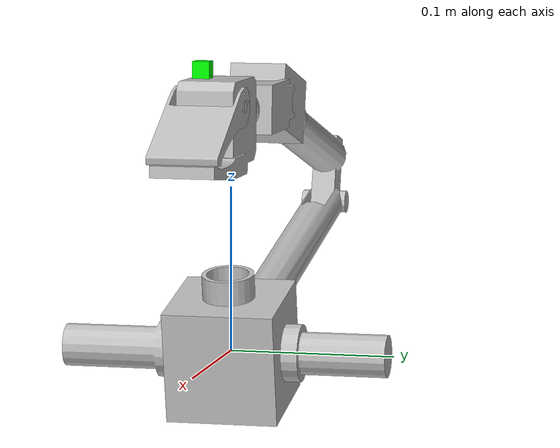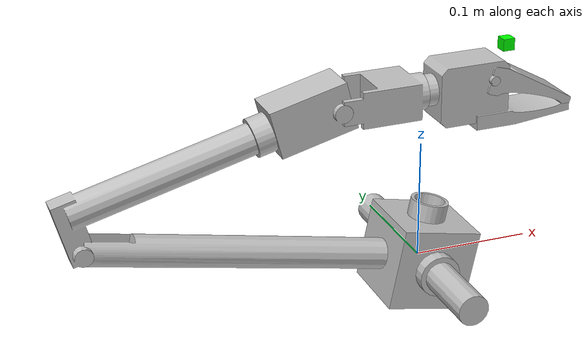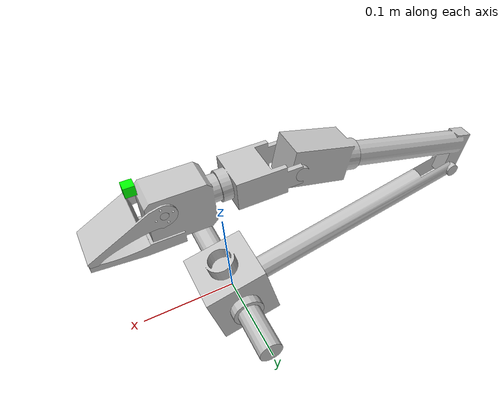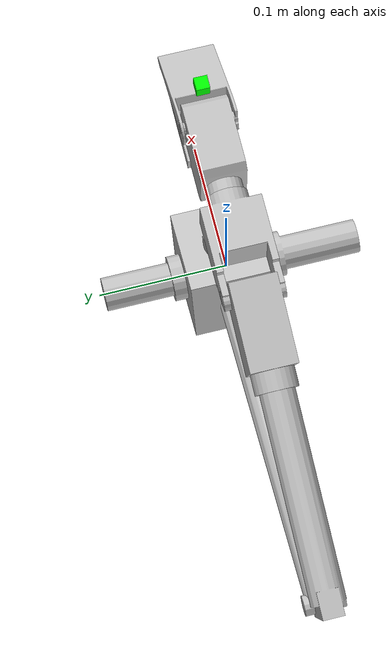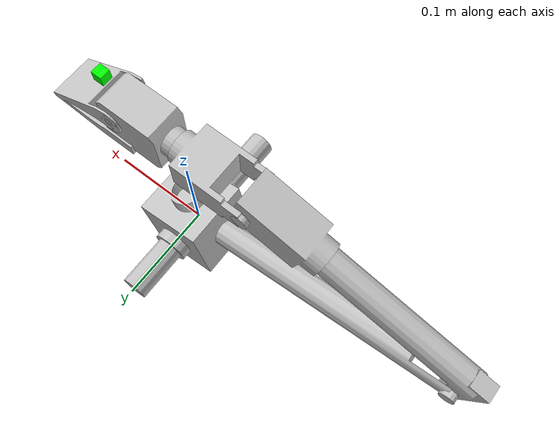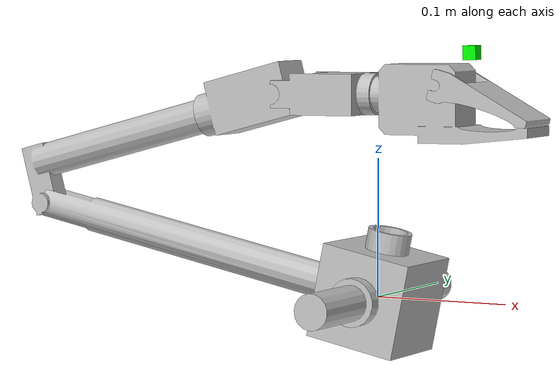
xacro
<?xml version="1.0" encoding="utf-8"?>

<robot
    name="reseq_arm_mk2" xmlns:xacro="http://www.ros.org/wiki/xacro">

    <xacro:arg name="sim_mode" default="false" />
    <xacro:arg name="version" default="mk2" />
    <xacro:arg name="config_path" default="$(find reseq_description)/config/mk2/reseq_mk2_can.yaml" />
    <xacro:arg name="controllers_config_file" default="$(find reseq_description)/config/reseq_controllers.yaml" />
    <xacro:arg name="base_z" default="0.0" />

    <link name="world" />

    <joint name="world_to_base_joint" type="fixed">
        <parent link="world"/>
        <child link="arm_base_link"/>
        <origin xyz="0 0 $(arg base_z)" rpy="0 0 0"/>
    </joint>

    <xacro:property name="config_path_prop" value="$(arg config_path)" />
    <xacro:property name="config" value="${xacro.load_yaml(config_path_prop)}" />
    <xacro:property name="CanInterface" value="${config['canbus']['channel']}" />

    <xacro:property name="NumModules" value="0" />
    <xacro:include filename="$(find reseq_description)/description/control/ros2_control.xacro" />

    <xacro:include filename="$(find reseq_arm_mk2)/urdf/reseq_arm_mk2.xacro" />
    <xacro:if value="$(arg sim_mode)">
        <xacro:include filename="$(find reseq_description)/description/sensors/gazebo/cameras_holder.xacro" />
    </xacro:if>

</robot>

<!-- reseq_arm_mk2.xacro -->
<robot
  name="reseq_arm_mk2" xmlns:xacro="http://www.ros.org/wiki/xacro">
  <xacro:include filename="$(find reseq_description)/description/macros/reseq_parameters.xacro" />
  <link
    name="arm_base_link">
    <inertial>
      <origin
        xyz="0 -0.0031516 0"
        rpy="0 0 0" />
      <mass
        value="0.11481" />
      <inertia
        ixx="0.00037274"
        ixy="-3.8623E-21"
        ixz="-1.0431E-22"
        iyy="1.1022E-05"
        iyz="2.037E-21"
        izz="0.00037274" />
    </inertial>
    <visual>
      <origin
        xyz="0 0 0"
        rpy="0 0 0" />
      <geometry>
        <mesh
          filename="package://reseq_arm_mk2/meshes/arm_base_link.STL" />
      </geometry>
      <material
        name="">
        <color
          rgba="0.75294 0.75294 0.75294 1" />
      </material>
    </visual>
    <collision>
      <origin
        xyz="0 0 0"
        rpy="0 0 0" />
      <geometry>
        <mesh
          filename="package://reseq_arm_mk2/meshes/arm_base_link.STL" />
      </geometry>
    </collision>
  </link>
  <link
    name="arm_diff_pitch_link">
    <inertial>
      <origin
        xyz="-1.3878E-17 0.00059334 1.7347E-18"
        rpy="0 0 0" />
      <mass
        value="0.28931" />
      <inertia
        ixx="0.0002425"
        ixy="-1.6941E-20"
        ixz="-1.5531E-20"
        iyy="0.00023577"
        iyz="8.3058E-21"
        izz="0.00025759" />
    </inertial>
    <visual>
      <origin
        xyz="0 0 0"
        rpy="0 0 0" />
      <geometry>
        <mesh
          filename="package://reseq_arm_mk2/meshes/arm_diff_pitch_link.STL" />
      </geometry>
      <material
        name="">
        <color
          rgba="0.75294 0.75294 0.75294 1" />
      </material>
    </visual>
    <collision>
      <origin
        xyz="0 0 0"
        rpy="0 0 0" />
      <geometry>
        <mesh
          filename="package://reseq_arm_mk2/meshes/arm_diff_pitch_link.STL" />
      </geometry>
    </collision>
  </link>
  <joint
    name="mod1__base_pitch_arm_joint"
    type="revolute">
    <origin
      xyz="0 0 0"
      rpy="1.5708 0.2 0" />
    <parent
      link="arm_base_link" />
    <child
      link="arm_diff_pitch_link" />
    <axis
      xyz="0 0 -1" />
    <limit
      lower="-0.1"
      upper="2.8"
      effort="${arm_pitch_effort}"
      velocity="2" />
    <dynamics damping="0.5" friction="0.1" />
  </joint>
  <link
    name="arm_diff_roll_link">
    <inertial>
      <origin
        xyz="-0.14664 7.62E-08 -1.1115E-08"
        rpy="0 0 0" />
      <mass
        value="0.11865" />
      <inertia
        ixx="1.0228E-05"
        ixy="2.2625E-10"
        ixz="9.7641E-11"
        iyy="0.00051383"
        iyz="2.7475E-10"
        izz="0.00051345" />
    </inertial>
    <visual>
      <origin
        xyz="0 0 0"
        rpy="0 1.5708 0" />
      <geometry>
        <mesh
          filename="package://reseq_arm_mk2/meshes/arm_diff_roll_link.STL" />
      </geometry>
      <material
        name="">
        <color
          rgba="0.75294 0.75294 0.75294 1" />
      </material>
    </visual>
    <collision>
      <origin
        xyz="0 0 0"
        rpy="0 1.5708 0" />
      <geometry>
        <mesh
          filename="package://reseq_arm_mk2/meshes/arm_diff_roll_link.STL" />
      </geometry>
    </collision>
  </link>
  <joint
    name="mod1__base_roll_arm_joint"
    type="revolute">
    <origin
      xyz="0 0 0"
      rpy="0 0 0" />
    <parent
      link="arm_diff_pitch_link" />
    <child
      link="arm_diff_roll_link" />
    <axis
      xyz="1 0 0" />
    <limit
      lower="-3.14"
      upper="3.14"
      effort="${arm_base_roll_effort}"
      velocity="2" />
    <dynamics damping="0.5" friction="0.1" />
  </joint>
  <link
    name="arm_pitch_forearm_link">
    <inertial>
      <origin
        xyz="0.060867 0.046121 -5.2042E-18"
        rpy="0 0 0" />
      <mass
        value="0.10409" />
      <inertia
        ixx="4.6765E-05"
        ixy="-9.086E-05"
        ixz="1.3572E-20"
        iyy="0.00027451"
        iyz="3.2775E-21"
        izz="0.00031255" />
    </inertial>
    <visual>
      <origin
        xyz="0 0 0"
        rpy="0 0 0" />
      <geometry>
        <mesh
          filename="package://reseq_arm_mk2/meshes/arm_pitch_forearm_link.STL" />
      </geometry>
      <material
        name="">
        <color
          rgba="0.75294 0.75294 0.75294 1" />
      </material>
    </visual>
    <collision>
      <origin
        xyz="0 0 0"
        rpy="0 0 0" />
      <geometry>
        <mesh
          filename="package://reseq_arm_mk2/meshes/arm_pitch_forearm_link.STL" />
      </geometry>
    </collision>
  </link>
  <joint
    name="mod1__elbow_pitch_arm_joint"
    type="revolute">
    <origin
      xyz="-0.28857 0 0"
      rpy="0 0 0.2" />
    <parent
      link="arm_diff_roll_link" />
    <child
      link="arm_pitch_forearm_link" />
    <axis
      xyz="0 0 1" />
    <limit
      lower="-0.1"
      upper="2.88"
      effort="${arm_pitch_effort}"
      velocity="2" />
    <dynamics damping="0.5" friction="0.1" />
  </joint>
  <link
    name="arm_roll_forearm_link">
    <inertial>
      <origin
        xyz="2.0817E-17 -0.0018789 0.03054"
        rpy="0 0 0" />
      <mass
        value="0.096867" />
      <inertia
        ixx="5.2065E-05"
        ixy="1.7168E-22"
        ixz="-6.5851E-21"
        iyy="4.9885E-05"
        iyz="2.3291E-07"
        izz="2.3052E-05" />
    </inertial>
    <visual>
      <origin
        xyz="0 0 0"
        rpy="0 0 0" />
      <geometry>
        <mesh
          filename="package://reseq_arm_mk2/meshes/arm_roll_forearm_link.STL" />
      </geometry>
      <material
        name="">
        <color
          rgba="0.75294 0.75294 0.75294 1" />
      </material>
    </visual>
    <collision>
      <origin
        xyz="0 0 0"
        rpy="0 0 0" />
      <geometry>
        <mesh
          filename="package://reseq_arm_mk2/meshes/arm_roll_forearm_link.STL" />
      </geometry>
    </collision>
  </link>
  <joint
    name="mod1__forearm_roll_arm_joint"
    type="revolute">
    <origin
      xyz="0.15351 0.074002 0"
      rpy="0.2618 -1.5708 3.14" />
    <parent
      link="arm_pitch_forearm_link" />
    <child
      link="arm_roll_forearm_link" />
    <axis
      xyz="0 0 1" />
    <limit
      lower="-3.14"
      upper="3.14"
      effort="${arm_forearm_roll_effort}"
      velocity="1" />
    <dynamics damping="0.5" friction="0.1" />
  </joint>
  <link
    name="arm_pitch_wrist_link">
    <inertial>
      <origin
        xyz="5.3776E-17 2.7756E-17 0.045311"
        rpy="0 0 0" />
      <mass
        value="0.056876" />
      <inertia
        ixx="1.6114E-05"
        ixy="3.0569E-22"
        ixz="-3.5109E-21"
        iyy="2.2881E-05"
        iyz="1.0674E-21"
        izz="1.5222E-05" />
    </inertial>
    <visual>
      <origin
        xyz="0 0 0"
        rpy="0 -1.5708 0" />
      <geometry>
        <mesh
          filename="package://reseq_arm_mk2/meshes/arm_pitch_wrist_link.STL" />
      </geometry>
      <material
        name="">
        <color
          rgba="0.75294 0.75294 0.75294 1" />
      </material>
    </visual>
    <collision>
      <origin
        xyz="0 0 0"
        rpy="0 -1.5708 0" />
      <geometry>
        <mesh
          filename="package://reseq_arm_mk2/meshes/arm_pitch_wrist_link.STL" />
      </geometry>
    </collision>
  </link>
  <joint
    name="mod1__wrist_pitch_arm_joint"
    type="revolute">
    <origin
      xyz="0 0 0.05447"
      rpy="-0.25 0 0" />
    <parent
      link="arm_roll_forearm_link" />
    <child
      link="arm_pitch_wrist_link" />
    <axis
      xyz="-1 0 0" />
    <limit
      lower="-0.46"
      upper="1.57"
      effort="${arm_wrist_pitch_effort}"
      velocity="1" />
    <dynamics damping="0.5" friction="0.1" />
  </joint>
  <link
    name="arm_roll_wrist_link">
    <inertial>
      <origin
        xyz="0.0001 0.0071 0.1197"
        rpy="0 0 0" />
      <mass
        value="0.1341" />
      <inertia
        ixx="1.332159E-04"
        ixy="0"
        ixz="-3.0E-10"
        iyy="1.128104E-04"
        iyz="-2.35230E-05"
        izz="4.67873E-05" />
    </inertial>
    <visual>
      <origin
        xyz="0 0 0"
        rpy="0 0 0" />
      <geometry>
        <mesh
          filename="package://reseq_arm_mk2/meshes/beak_body.STL" />
      </geometry>
      <material
        name="">
        <color
          rgba="0.75294 0.75294 0.75294 1" />
      </material>
    </visual>
    <collision>
      <origin
        xyz="0 0 0"
        rpy="0 0 0" />
      <geometry>
        <mesh
          filename="package://reseq_arm_mk2/meshes/beak_body.STL" />
      </geometry>
    </collision>
  </link>
  <joint
    name="mod1__wrist_roll_arm_joint"
    type="revolute">
    <origin
      xyz="0 0 0"
      rpy="0 0 0" />
    <parent
      link="arm_pitch_wrist_link" />
    <child
      link="arm_roll_wrist_link" />
    <axis
      xyz="0 0 -1" />
    <limit
      lower="-3.14"
      upper="3.14"
      effort="${arm_wrist_roll_effort}"
      velocity="1" />
    <dynamics damping="0.5" friction="0.1" />
  </joint>
  <link
    name="beak_finger_upper_link">
    <inertial>
      <origin
        xyz="0.0208 0.0127 0.0386"
        rpy="0 0 0" />
      <mass
        value="0.0233" />
      <inertia
        ixx="7.8788E-06"
        ixy="-6.43E-08"
        ixz="-2.019E-07"
        iyy="1.04238E-05"
        iyz="-2.6102E-06"
        izz="5.3419E-06" />
    </inertial>
    <visual>
      <origin
        xyz="0 0 0"
        rpy="0 0 0" />
      <geometry>
        <mesh
          filename="package://reseq_arm_mk2/meshes/beak_finger_upper.STL" />
      </geometry>
      <material
        name="">
        <color
          rgba="0.75294 0.75294 0.75294 1" />
      </material>
    </visual>
    <collision>
      <origin
        xyz="0 0 0"
        rpy="0 0 0" />
      <geometry>
        <mesh
          filename="package://reseq_arm_mk2/meshes/beak_finger_upper.STL" />
      </geometry>
    </collision>
  </link>
  <joint
    name="mod1__beak"
    type="revolute">
    <origin
      xyz="-0.021 -0.0073 0.1307"
      rpy="0 0 0" />
    <parent
      link="arm_roll_wrist_link" />
    <child
      link="beak_finger_upper_link" />
    <axis
      xyz="1 0 0" />
    <limit
      lower="-0.05"
      upper="1.0"
      effort="${XL430Torque}"
      velocity="${XL430Velocity}" />
    <dynamics damping="0.5" friction="0.1" />
  </joint>

  <gazebo reference="arm_base_link">
    <material>Gazebo/Grey</material>
    <selfCollide>false</selfCollide>
  </gazebo>
  <gazebo reference="arm_diff_pitch_link">
    <material>Gazebo/Grey</material>
    <selfCollide>false</selfCollide>
  </gazebo>
  <gazebo reference="arm_diff_roll_link">
    <material>Gazebo/Grey</material>
    <selfCollide>false</selfCollide>
  </gazebo>
  <gazebo reference="arm_pitch_forearm_link">
    <material>Gazebo/Grey</material>
    <selfCollide>false</selfCollide>
  </gazebo>
  <gazebo reference="arm_roll_forearm_link">
    <material>Gazebo/Grey</material>
    <selfCollide>false</selfCollide>
  </gazebo>
  <gazebo reference="arm_pitch_wrist_link">
    <material>Gazebo/Grey</material>
    <selfCollide>false</selfCollide>
  </gazebo>
  <gazebo reference="arm_roll_wrist_link">
    <material>Gazebo/Grey</material>
    <selfCollide>false</selfCollide>
  </gazebo>
  <gazebo reference="beak_finger_upper_link">
    <material>Gazebo/Grey</material>
    <selfCollide>false</selfCollide>
  </gazebo>

  <!-- realsense link for camera mounting - attached to the wrist on the beak -->
  <xacro:unless value="$(arg sim_mode)">
    <link name="realsense_link">
          <visual name="cube">
              <origin xyz="0 0 0"/>
              <geometry>
                  <box size="0.01 0.01 0.01"/>
              </geometry>
              <material name="green">
                  <color rgba="0 1 0 1.0"/>
              </material>
          </visual>
      </link>

    <joint name="realsense_joint" type="fixed">
      <origin xyz="0 -0.03 0.15" rpy="1.57 -1.57 0"/>
      <parent link="arm_roll_wrist_link"/>
      <child link="realsense_link"/>
    </joint>
  </xacro:unless>
</robot>

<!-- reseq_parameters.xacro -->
<robot xmlns:xacro="http://www.ros.org/wiki/xacro">

  <!-- import values from config.yaml file -->

  <xacro:arg name="config_path" default="$(find reseq_description)/config/mk2/reseq_mk2_can.yaml"/>
  <xacro:property name="config_path_prop" value="$(arg config_path)"/>

  <xacro:property name="config" value="${xacro.load_yaml(config_path_prop)}"/>
  <xacro:property name="a" value="${config['ftl_controller_consts']['a']}" />
  <xacro:property name="b" value="${config['ftl_controller_consts']['b']}" />
  <xacro:property name="r_eq" value="${config['ftl_controller_consts']['r_eq']}" />

  <!-- See 'Parameters.pdf' pdf for parameters meaning (when it will exist ;) ) -->
  <!-- All values are in meters, radiants, kg -->

  <xacro:property name="toll" value="0.001"/>

  <!-- chassis related -->
  <xacro:property name="NumModules" value="${config['num_modules']}"/>
  <xacro:property name="WheelBase" value="${config['xacro']['WheelBase']}"/>
  <xacro:property name="EquivalentWheelDiameter" value="${r_eq*2}"/>
  <xacro:property name="ModuleWidth" value="${config['xacro']['ModuleWidth']}"/>
  <xacro:property name="TrackWidth" value="${config['xacro']['TrackWidth']}"/>
  <xacro:property name="ChassisTopAndBottomClearance" value="${config['xacro']['ChassisTopAndBottomClearance']}"/>

  <xacro:property name="WheelMass" value="${config['xacro']['WheelMass']}"/>
  <xacro:property name="ChassisMass" value="${config['xacro']['ChassisMass']}"/>

  <!-- joint related -->
  <xacro:property name="JointDiameter" value="${config['xacro']['JointDiameter']}"/>
  <xacro:property name="JointA" value="${a-WheelBase/2}"/>
  <xacro:property name="JointB" value="${b-WheelBase/2}"/>
  <xacro:property name="JointABottomClearance" value="${config['xacro']['JointABottomClearance']}"/>
  <xacro:property name="JointWidth" value="${config['xacro']['JointWidth']}"/>

  <xacro:property name="pitch" value="${pi/2}"/>
  <xacro:property name="roll" value="${pi/2}"/>
  <xacro:property name="yaw" value="${pi/4}"/>

  <!-- actuator limits at 12V: angular velocity [rad/s], output torque [Nm]. -->
  <xacro:property name="XM540Velocity" value="3.14"/>  <!-- XM540-W270-T -->
  <xacro:property name="XM540Torque" value="10.6"/>
  <xacro:property name="XL430Velocity" value="6.39"/>  <!-- XL430-W250-T -->
  <xacro:property name="XL430Torque" value="1.5"/>

  <!-- Mechanism limits may be derated independently here. -->
  <xacro:property name="TractionVelocity" value="${XM540Velocity}"/>
  <xacro:property name="TractionTorque" value="${XM540Torque}"/>
  <xacro:property name="YawVelocity" value="${XM540Velocity}"/>
  <xacro:property name="YawTorque" value="${XM540Torque}"/>
  <xacro:property name="PitchVelocity" value="${XM540Velocity}"/>
  <xacro:property name="PitchTorque" value="${XM540Torque}"/>
  <xacro:property name="RollVelocity" value="${XL430Velocity}"/>
  <xacro:property name="RollTorque" value="${XL430Torque}"/>

  <xacro:property name="arm_pitch_effort" value="${XM540Torque}" />
  <xacro:property name="arm_wrist_pitch_effort" value="${XL430Torque}" />
  <xacro:property name="arm_base_roll_effort" value="${XM540Torque}" />
  <xacro:property name="arm_forearm_roll_effort" value="${XL430Torque}" />
  <xacro:property name="arm_wrist_roll_effort" value="${XL430Torque}" />

  <xacro:property name="JointAMass" value="${config['xacro']['JointAMass']}"/>
  <xacro:property name="JointBMass" value="${config['xacro']['JointBMass']}"/>

</robot>
